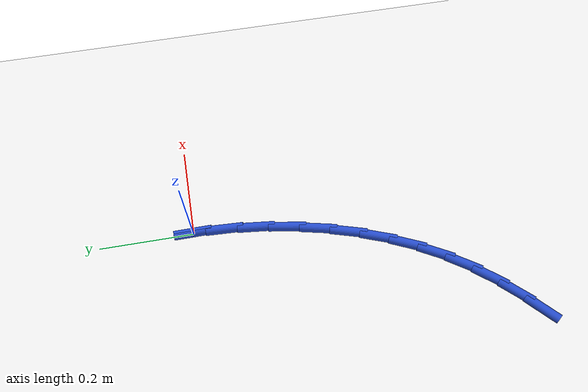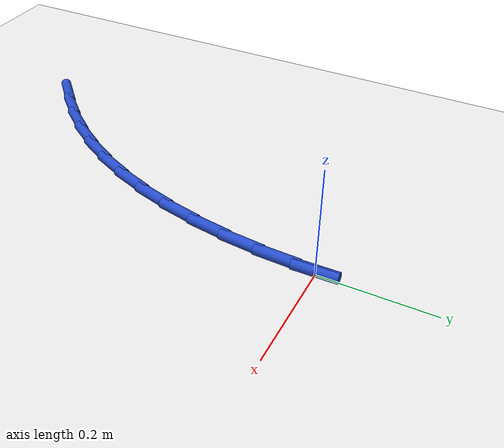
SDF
<sdf version="1.6">
 <world name="default">
  <model name="ground_plane">
   <static>1</static>
   <link name="link">
    <collision name="collision">
     <geometry><plane><normal>0 0 1</normal><size>100 100</size></plane></geometry>
     <surface><friction><ode><mu>100</mu><mu2>50</mu2></ode></friction></surface>
    </collision>
    <visual name="visual">
     <cast_shadows>0</cast_shadows>
     <geometry><plane><normal>0 0 1</normal><size>100 100</size></plane></geometry>
     <material>
      <script><uri>file://media/materials/scripts/gazebo.material</uri><name>Gazebo/WhiteGlow</name></script>
     </material>
    </visual>
   </link>
  </model>
  <model name="line">
   <link name="link_0">
    <pose>6.245004513516506e-17 -6.938893903907228e-17 0.01 0 1.57 -1.55443071004679</pose>
    <collision name="collision">
     <geometry><cylinder><radius>0.01</radius><length>0.08</length></cylinder></geometry>
    </collision>
    <visual name="visual">
     <material>
      <script><name>Gazebo/Blue</name><uri>file://media/materials/scripts/gazebo.material</uri></script>
     </material>
     <geometry><cylinder><radius>0.01</radius><length>0.08</length></cylinder></geometry>
    </visual>
   </link>
   <link name="link_98">
    <pose>-0.28965619466542825 -0.6839771793297372 0.01 0 1.57 0.7556437311478086</pose>
    <collision name="collision">
     <geometry><cylinder><radius>0.01</radius><length>0.08</length></cylinder></geometry>
    </collision>
    <visual name="visual">
     <material>
      <script><name>Gazebo/Blue</name><uri>file://media/materials/scripts/gazebo.material</uri></script>
     </material>
     <geometry><cylinder><radius>0.01</radius><length>0.08</length></cylinder></geometry>
    </visual>
   </link>
   <link name="link_99">
    <pose>-0.2449108488682411 -0.6418183803773658 0.01 0 1.57 0.819615727884032</pose>
    <collision name="collision">
     <geometry><cylinder><radius>0.01</radius><length>0.08</length></cylinder></geometry>
    </collision>
    <visual name="visual">
     <material>
      <script><name>Gazebo/Blue</name><uri>file://media/materials/scripts/gazebo.material</uri></script>
     </material>
     <geometry><cylinder><radius>0.01</radius><length>0.08</length></cylinder></geometry>
    </visual>
   </link>
   <link name="link_100">
    <pose>-0.20337127202312494 -0.5973341282787221 0.01 0 1.57 0.8960762790244244</pose>
    <collision name="collision">
     <geometry><cylinder><radius>0.01</radius><length>0.08</length></cylinder></geometry>
    </collision>
    <visual name="visual">
     <material>
      <script><name>Gazebo/Blue</name><uri>file://media/materials/scripts/gazebo.material</uri></script>
     </material>
     <geometry><cylinder><radius>0.01</radius><length>0.08</length></cylinder></geometry>
    </visual>
   </link>
   <link name="link_101">
    <pose>-0.16538944858491747 -0.5498548153036882 0.01 0 1.57 0.9817986479691523</pose>
    <collision name="collision">
     <geometry><cylinder><radius>0.01</radius><length>0.08</length></cylinder></geometry>
    </collision>
    <visual name="visual">
     <material>
      <script><name>Gazebo/Blue</name><uri>file://media/materials/scripts/gazebo.material</uri></script>
     </material>
     <geometry><cylinder><radius>0.01</radius><length>0.08</length></cylinder></geometry>
    </visual>
   </link>
   <link name="link_102">
    <pose>-0.1312844903816331 -0.49880750890480513 0.01 0 1.57 1.0656530680183343</pose>
    <collision name="collision">
     <geometry><cylinder><radius>0.01</radius><length>0.08</length></cylinder></geometry>
    </collision>
    <visual name="visual">
     <material>
      <script><name>Gazebo/Blue</name><uri>file://media/materials/scripts/gazebo.material</uri></script>
     </material>
     <geometry><cylinder><radius>0.01</radius><length>0.08</length></cylinder></geometry>
    </visual>
   </link>
   <link name="link_103">
    <pose>-0.10114321063840509 -0.4443024440219009 0.01 0 1.57 1.1437650801836443</pose>
    <collision name="collision">
     <geometry><cylinder><radius>0.01</radius><length>0.08</length></cylinder></geometry>
    </collision>
    <visual name="visual">
     <material>
      <script><name>Gazebo/Blue</name><uri>file://media/materials/scripts/gazebo.material</uri></script>
     </material>
     <geometry><cylinder><radius>0.01</radius><length>0.08</length></cylinder></geometry>
    </visual>
   </link>
   <link name="link_104">
    <pose>-0.07495233199793175 -0.38674421221534444 0.01 0 1.57 1.2167370583781423</pose>
    <collision name="collision">
     <geometry><cylinder><radius>0.01</radius><length>0.08</length></cylinder></geometry>
    </collision>
    <visual name="visual">
     <material>
      <script><name>Gazebo/Blue</name><uri>file://media/materials/scripts/gazebo.material</uri></script>
     </material>
     <geometry><cylinder><radius>0.01</radius><length>0.08</length></cylinder></geometry>
    </visual>
   </link>
   <link name="link_105">
    <pose>-0.05269818511533966 -0.32653855784264924 0.01 0 1.57 1.28527228291247</pose>
    <collision name="collision">
     <geometry><cylinder><radius>0.01</radius><length>0.08</length></cylinder></geometry>
    </collision>
    <visual name="visual">
     <material>
      <script><name>Gazebo/Blue</name><uri>file://media/materials/scripts/gazebo.material</uri></script>
     </material>
     <geometry><cylinder><radius>0.01</radius><length>0.08</length></cylinder></geometry>
    </visual>
   </link>
   <link name="link_106">
    <pose>-0.03436710064575418 -0.2640912252613259 0.01 0 1.57 1.3501044920897354</pose>
    <collision name="collision">
     <geometry><cylinder><radius>0.01</radius><length>0.08</length></cylinder></geometry>
    </collision>
    <visual name="visual">
     <material>
      <script><name>Gazebo/Blue</name><uri>file://media/materials/scripts/gazebo.material</uri></script>
     </material>
     <geometry><cylinder><radius>0.01</radius><length>0.08</length></cylinder></geometry>
    </visual>
   </link>
   <link name="link_107">
    <pose>-0.019945409244301687 -0.19980795882888794 0.01 0 1.57 1.4119657656657896</pose>
    <collision name="collision">
     <geometry><cylinder><radius>0.01</radius><length>0.08</length></cylinder></geometry>
    </collision>
    <visual name="visual">
     <material>
      <script><name>Gazebo/Blue</name><uri>file://media/materials/scripts/gazebo.material</uri></script>
     </material>
     <geometry><cylinder><radius>0.01</radius><length>0.08</length></cylinder></geometry>
    </visual>
   </link>
   <link name="link_108">
    <pose>-0.009419441566107759 -0.1340945029028458 0.01 0 1.57 1.4715709352580293</pose>
    <collision name="collision">
     <geometry><cylinder><radius>0.01</radius><length>0.08</length></cylinder></geometry>
    </collision>
    <visual name="visual">
     <material>
      <script><name>Gazebo/Blue</name><uri>file://media/materials/scripts/gazebo.material</uri></script>
     </material>
     <geometry><cylinder><radius>0.01</radius><length>0.08</length></cylinder></geometry>
    </visual>
   </link>
   <link name="link_109">
    <pose>-0.002775528266298583 -0.0673566018407129 0.01 0 1.57 1.5296131485425015</pose>
    <collision name="collision">
     <geometry><cylinder><radius>0.01</radius><length>0.08</length></cylinder></geometry>
    </collision>
    <visual name="visual">
     <material>
      <script><name>Gazebo/Blue</name><uri>file://media/materials/scripts/gazebo.material</uri></script>
     </material>
     <geometry><cylinder><radius>0.01</radius><length>0.08</length></cylinder></geometry>
    </visual>
   </link>
   <link name="link_110">
    <pose>9.367506770274758e-17 1.249000902703301e-16 0.01 0 1.57 -1.5548261813444537</pose>
    <collision name="collision">
     <geometry><cylinder><radius>0.01</radius><length>0.08</length></cylinder></geometry>
    </collision>
    <visual name="visual">
     <material>
      <script><name>Gazebo/Blue</name><uri>file://media/materials/scripts/gazebo.material</uri></script>
     </material>
     <geometry><cylinder><radius>0.01</radius><length>0.08</length></cylinder></geometry>
    </visual>
   </link>
  </model>
 </world>
</sdf>
